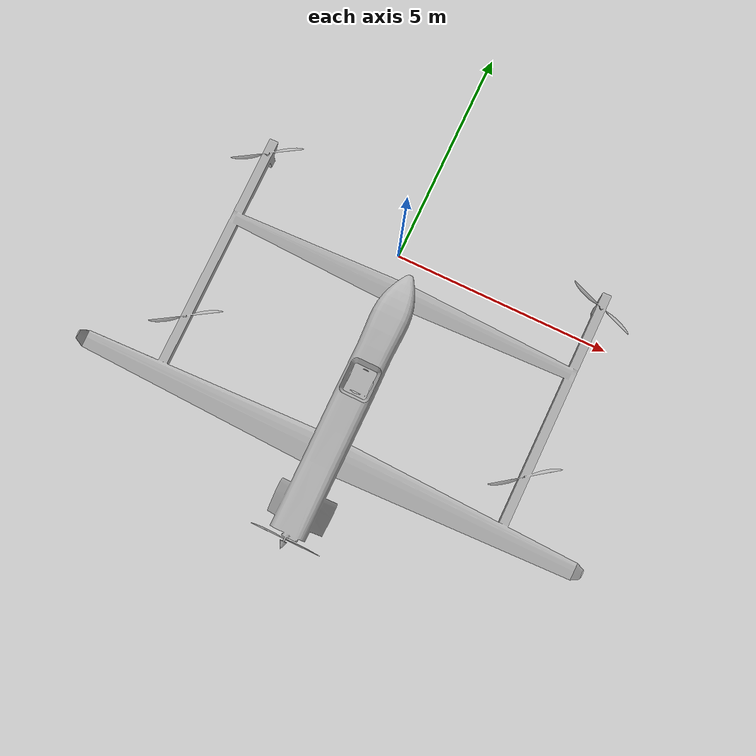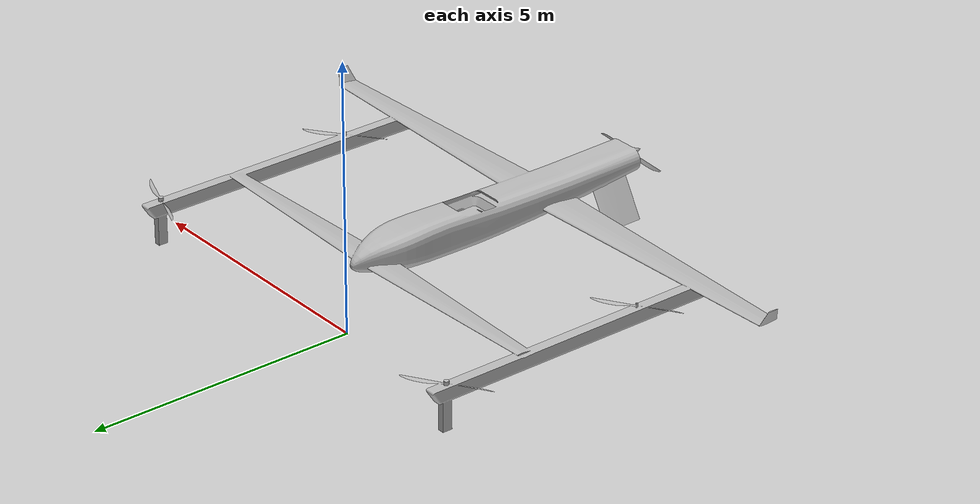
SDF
<sdf version='1.6'>
  <model name='feiji2'>
    <link name='base_link'>
      <pose frame=''>0 0 0 0 -0 0</pose>
      <inertial>
        <pose frame=''>0.471432 -3.22338 0.919161 0 -0 0</pose>
        <mass>3351.06</mass>
        <inertia>
          <ixx>10180.8</ixx>
          <ixy>-0.43718</ixy>
          <ixz>0.0233472</ixz>
          <iyy>12621.5</iyy>
          <iyz>120.771</iyz>
          <izz>22620.4</izz>
        </inertia>
      </inertial>
      <collision name='base_link_collision'>
        <pose frame=''>0 0 0 0 -0 0</pose>
        <geometry>
          <mesh>
            <scale>1 1 1</scale>
            <uri>model://feiji2/meshes/base_link.STL</uri>
          </mesh>
        </geometry>
      </collision>
      <visual name='base_link_visual'>
        <pose frame=''>0 0 0 0 -0 0</pose>
        <geometry>
          <mesh>
            <scale>1 1 1</scale>
            <uri>model://feiji2/meshes/base_link.STL</uri>
          </mesh>
        </geometry>
      </visual>
    </link>
  </model>
</sdf>
